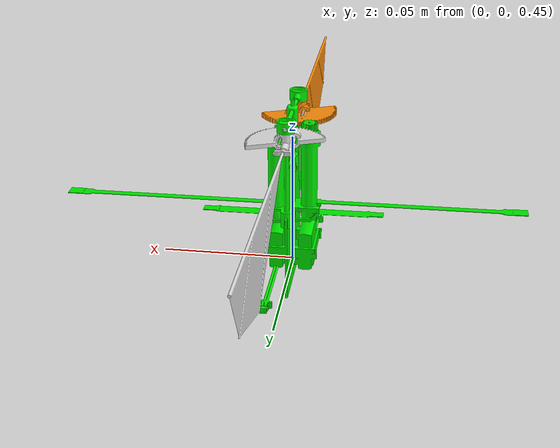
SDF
<?xml version="1.0" ?>
<sdf version="1.9">
    <world name="world1">
        <physics name="1ms" type="ignored">
            <max_step_size>0.0001</max_step_size>
            <real_time_factor>1</real_time_factor>
        </physics>
        <plugin filename="libignition-gazebo-physics-system.so" name="ignition::gazebo::systems::Physics">
    </plugin>
        <plugin filename="libignition-gazebo-user-commands-system.so" name="ignition::gazebo::systems::UserCommands">
    </plugin>
        <plugin filename="libignition-gazebo-scene-broadcaster-system.so" name="ignition::gazebo::systems::SceneBroadcaster">
    </plugin>
        <light type="directional" name="sun">
            <cast_shadows>true</cast_shadows>
            <pose>0 0 10 0 0 0</pose>
            <diffuse>0.8 0.8 0.8 1</diffuse>
            <specular>0.2 0.2 0.2 1</specular>
            <attenuation>
                <range>1000</range>
                <constant>0.9</constant>
                <linear>0.01</linear>
                <quadratic>0.001</quadratic>
            </attenuation>
            <direction>-0.5 0.1 -0.9</direction>
        </light>
        <model name="ground_plane">
            <pose relative_to="world">0 0 0 0 0 0</pose>
            <static>true</static>
            <link name="link">
                <collision name="link">
                    <geometry>
                        <plane>
                            <normal>0 0 1</normal>
                        </plane>
                    </geometry>
                </collision>
                <visual name="link">
                    <geometry>
                        <plane>
                            <normal>0 0 1</normal>
                            <size>100 100</size>
                        </plane>
                    </geometry>
                    <material>
                        <ambient>0.8 0.8 0.8 1</ambient>
                        <diffuse>0.8 0.8 0.8 1</diffuse>
                        <specular>0.8 0.8 0.8 1</specular>
                    </material>
                </visual>
            </link>
        </model>
        <model name="hardrobot">
            <pose relative_to="world">0 0 0.5 3.145 0 1.57</pose>
            <link name="base_link">
                <inertial>
                    <pose>-8.3564e-06 -4.8616e-05 0.028244 0 0 0</pose>
                    <mass>0.0094893000000000009</mass>
                    <inertia>
                        <ixx>1.0833000000000001e-06</ixx>
                        <ixy>-2.4791999999999999e-09</ixy>
                        <ixz>-2.8749000000000001e-16</ixz>
                        <iyy>1.2964e-06</iyy>
                        <iyz>-2.8980999999999999e-15</iyz>
                        <izz>7.5880000000000004e-07</izz>
                    </inertia>
                </inertial>
                <collision name="base_link_collision">
                    <pose>0 0 0 0 0 0</pose>
                    <geometry>
                        <mesh>
                            <scale>1 1 1</scale>
                            <uri>model://hardrobot/meshes/base_link.STL</uri>
                        </mesh>
                    </geometry>
                </collision>
                <visual name="base_link_visual">
                    <pose>0 0 0 0 0 0</pose>
                    <geometry>
                        <mesh>
                            <scale>1 1 1</scale>
                            <uri>model://hardrobot/meshes/base_link.STL</uri>
                        </mesh>
                    </geometry>
                    <material>
                        <diffuse>0 0.941175 0 1</diffuse>
                        <ambient>0 0.941175 0 1</ambient>
                    </material>
                </visual>
            </link>
            <link name="stroke_link_1">
                <pose relative_to="stroke_joint_1">0 0 0 0 0 0</pose>
                <inertial>
                    <pose>-0.0028729 0.0019735 0.0011937 0 0 0</pose>
                    <mass>0.0010774000000000001</mass>
                    <inertia>
                        <ixx>2.8171999999999999e-08</ixx>
                        <ixy>-2.9826000000000001e-10</ixy>
                        <ixz>-6.2879999999999998e-09</ixz>
                        <iyy>4.2497e-08</iyy>
                        <iyz>1.2433e-10</iyz>
                        <izz>1.6038999999999999e-08</izz>
                    </inertia>
                </inertial>
                <collision name="stroke_link_1_collision">
                    <pose>0 0 0 0 0 0</pose>
                    <geometry>
                        <mesh>
                            <scale>1 1 1</scale>
                            <uri>model://hardrobot/meshes/stroke_link_1.STL</uri>
                        </mesh>
                    </geometry>
                </collision>
                <visual name="stroke_link_1_visual">
                    <pose>0 0 0 0 0 0</pose>
                    <geometry>
                        <mesh>
                            <scale>1 1 1</scale>
                            <uri>model://hardrobot/meshes/stroke_link_1.STL</uri>
                        </mesh>
                    </geometry>
                    <material>
                        <diffuse>0.87255 0.87255 0.87255 1</diffuse>
                        <ambient>0.87255 0.87255 0.87255 1</ambient>
                    </material>
                </visual>
            </link>
            <link name="wing_link_1">
                <pose relative_to="pitch_joint_1">0 0 0 0 0 0</pose>
                <inertial>
                    <pose>0.10716044 -0.0262 0 0 0 0</pose>
                    <mass>0.00045176542225101337</mass>
                    <inertia>
                        <ixx>3.466440e-07</ixx>
                        <ixy>5.898330e-07</ixy>
                        <ixz>0.0</ixz>
                        <iyy>1.315983e-06</iyy>
                        <iyz>0.0</iyz>
                        <izz>1.574747e-06</izz>
                    </inertia>
                </inertial>
                <collision name="wing_link_1_collision">
                    <pose>0 0 0 0 0 0</pose>
                    <geometry>
                        <mesh>
                            <scale>1 1 1</scale>
                            <uri>model://hardrobot/meshes/wing_link_1.STL</uri>
                        </mesh>
                    </geometry>
                </collision>
                <visual name="wing_link_1_visual">
                    <pose>0 0 0 0 0 0</pose>
                    <geometry>
                        <mesh>
                            <scale>1 1 1</scale>
                            <uri>model://hardrobot/meshes/wing_link_1.STL</uri>
                        </mesh>
                    </geometry>
                    <material>
                        <diffuse>0.87255 0.87255 0.87255 1</diffuse>
                        <ambient>0.87255 0.87255 0.87255 1</ambient>
                    </material>
                </visual>
            </link>
            <link name="stroke_link_2">
                <pose relative_to="stroke_joint_2">0 0 0 0 0 0</pose>
                <inertial>
                    <pose>-0.0028729 0.0019735 0.0011937 0 0 0</pose>
                    <mass>0.0010774000000000001</mass>
                    <inertia>
                        <ixx>2.8171999999999999e-08</ixx>
                        <ixy>-2.9826000000000001e-10</ixy>
                        <ixz>-6.2879999999999998e-09</ixz>
                        <iyy>4.2497e-08</iyy>
                        <iyz>1.2433e-10</iyz>
                        <izz>1.6038999999999999e-08</izz>
                    </inertia>
                </inertial>
                <collision name="stroke_link_2_collision">
                    <pose>0 0 0 0 0 0</pose>
                    <geometry>
                        <mesh>
                            <scale>1 1 1</scale>
                            <uri>model://hardrobot/meshes/stroke_link_2.STL</uri>
                        </mesh>
                    </geometry>
                </collision>
                <visual name="stroke_link_2_visual">
                    <pose>0 0 0 0 0 0</pose>
                    <geometry>
                        <mesh>
                            <scale>1 1 1</scale>
                            <uri>model://hardrobot/meshes/stroke_link_2.STL</uri>
                        </mesh>
                    </geometry>
                    <material>
                        <diffuse>1 0.553925 0.0392163 1</diffuse>
                        <ambient>1 0.553925 0.0392163 1</ambient>
                    </material>
                </visual>
            </link>
            <joint name="stroke_joint_1" type="revolute">
                <pose relative_to="base_link">0.0165 0 -0.004 -1.5708 0 0</pose>
                <parent>base_link</parent>
                <child>stroke_link_1</child>
                <axis>
                    <xyz>0 1 0</xyz>
                    <limit>
                        <lower>-1.5708</lower>
                        <upper>1.5708</upper>
                    </limit>
                    <dynamics>
                        <damping>0.00010791988904416266</damping>
                        <spring_stiffness>0.020595037825713414</spring_stiffness>
                    </dynamics>
                </axis>
            </joint>
            <joint name="stroke_joint_2" type="revolute">
                <pose relative_to="base_link">-0.0165 0 -0.004 -1.5708 0 -3.141585307179587</pose>
                <parent>base_link</parent>
                <child>stroke_link_2</child>
                <axis>
                    <xyz>0 1 0</xyz>
                    <limit>
                        <lower>-1.5708</lower>
                        <upper>1.5708</upper>
                    </limit>
                    <dynamics>
                        <damping>0.00010791988904416266</damping>
                        <spring_stiffness>0.020595037825713414</spring_stiffness>
                    </dynamics>
                </axis>
            </joint>
            <joint name="pitch_joint_1" type="revolute">
                <pose relative_to="stroke_link_1">0 0 0 0 0 0</pose>
                <parent>stroke_link_1</parent>
                <child>wing_link_1</child>
                <axis>
                    <xyz>-1 0 0</xyz>
                    <dynamics>
                        <spring_reference>0</spring_reference>
                        <spring_stiffness>0.018139317614887816</spring_stiffness>
                    </dynamics>
                </axis>
            </joint>
            <joint name="pitch_joint_2" type="revolute">
                <pose relative_to="stroke_link_2">0 0 0 0 0 0</pose>
                <parent>stroke_link_2</parent>
                <child>wing_link_2</child>
                <axis>
                    <xyz>-1 0 0</xyz>
                    <limit>
                        <lower>-1.79769e+308</lower>
                        <upper>1.79769e+308</upper>
                    </limit>
                    <dynamics>
                        <spring_reference>0</spring_reference>
                        <spring_stiffness>0.018139317614887816</spring_stiffness>
                    </dynamics>
                </axis>
            </joint>
            <link name="wing_link_2">
                <pose relative_to="pitch_joint_2">0 0 0 0 0 0</pose>
                <inertial>
                    <pose>0.10716044 -0.0262009 0 0 0 0</pose>
                    <mass>0.00045176542225101337</mass>
                    <inertia>
                        <ixx>3.466440e-07</ixx>
                        <ixy>5.898330e-07</ixy>
                        <ixz>0.0</ixz>
                        <iyy>1.315983e-06</iyy>
                        <iyz>0.0</iyz>
                        <izz>1.574747e-06</izz>
                    </inertia>
                </inertial>
                <collision name="wing_link_2_collision">
                    <pose>0 0 0 0 0 0</pose>
                    <geometry>
                        <mesh>
                            <scale>1 1 1</scale>
                            <uri>model://hardrobot/meshes/wing_link_2.STL</uri>
                        </mesh>
                    </geometry>
                </collision>
                <visual name="wing_link_2_visual">
                    <pose>0 0 0 0 0 0</pose>
                    <geometry>
                        <mesh>
                            <scale>1 1 1</scale>
                            <uri>model://hardrobot/meshes/wing_link_2.STL</uri>
                        </mesh>
                    </geometry>
                    <material>
                        <diffuse>1 0.553925 0.0392163 1</diffuse>
                        <ambient>1 0.553925 0.0392163 1</ambient>
                    </material>
                </visual>
            </link>
            <joint name="anchor" type="revolute">
                <pose relative_to="base_link">0 0 0 0 0 0</pose>
                <parent>world</parent>
                <child>base_link</child>
                <axis>
                    <xyz>0 0 1</xyz>
                    <limit>
                        <lower>0</lower>
                        <upper>0</upper>
                    </limit>
                </axis>
            </joint>
            <plugin filename="aero_state_plugins" name="odometry_state">
                <world_name>world1</world_name>
                <odometry_topic>/odom</odometry_topic>
                <odom_publish_frequency>30000.0</odom_publish_frequency>
                <joint>stroke_joint_1</joint>
                <joint>pitch_joint_1</joint>
                <joint>pitch_joint_2</joint>
                <joint>stroke_joint_2</joint>
            </plugin>
            <plugin filename="libignition-gazebo-apply-joint-force-system.so" name="ignition::gazebo::systems::ApplyJointForce">
                <joint_name>stroke_joint_1</joint_name>
            </plugin>
            <plugin filename="libignition-gazebo-apply-joint-force-system.so" name="ignition::gazebo::systems::ApplyJointForce">
                <joint_name>stroke_joint_2</joint_name>
            </plugin>
            <plugin filename="aero_state_plugins" name="aerodynamics">
                <data_file_path>
          /home/darin/Github/ros2-gazebo-drake-sims/flapping_proj/optimization/data/aero.csv</data_file_path>
                <only_data>false</only_data>
                <link>
                    <link_name>wing_link_1</link_name>
                    <link_type>wing</link_type>
                    <stall_angle>15</stall_angle>
                    <fluid_density>1.293</fluid_density>
                    <drag_coefficient>1.28</drag_coefficient>
                    <lift_coefficient>1</lift_coefficient>
                    <control_joint>stroke_joint_1</control_joint>
                    <wing_pitch_joint>pitch_joint_1</wing_pitch_joint>
                    <blades>20</blades>
                    <center_pressure_list>0.01475, -0.006729472746176798, 0, 0.02425, -0.020225191313646113,
            0, 0.03375, -0.033658135195863866, 0, 0.043250000000000004, -0.04708460442700082, 0,
            0.05275, -0.06063880086582263, 0, 0.06225, -0.07412146712531768, 0, 0.07175,
            -0.08750407466489328, 0, 0.08124999999999999, -0.1009744055875916, 0,
            0.09074999999999998, -0.11458479905477152, 0, 0.10024999999999999, -0.1280322776675807,
            0, 0.10974999999999997, -0.14143773751704541, 0, 0.11924999999999998,
            -0.15218624611771853, 0, 0.12875, -0.143421304943054, 0, 0.13824999999999998,
            -0.1345441941628465, 0, 0.14775, -0.125667083382639, 0, 0.15725, -0.11678997260243146,
            0, 0.16674999999999998, -0.10791286182222395, 0, 0.17625000000000002,
            -0.09937717837971674, 0, 0.18574999999999997, -0.06666184128512709, 0, 0.19525,
            -0.02260705921843443, 0</center_pressure_list>
                    <upward_vector_list>0, 0, 1, 0, 0, 1, 0, 0, 1, 0, 0, 1, 0, 0, 1, 0, 0, 1, 0, 0, 1, 0, 0,
            1, 0, 0, 1, 0, 0, 1, 0, 0, 1, 0, 0, 1, 0, 0, 1, 0, 0, 1, 0, 0, 1, 0, 0, 1, 0, 0, 1, 0,
            0, 1, 0, 0, 1, 0, 0, 1 </upward_vector_list>
                    <chord_direction_list>0, 0, 1, 0, 0, 1, 0, 0, 1, 0, 0, 1, 0, 0, 1, 0, 0, 1, 0, 0, 1, 0, 0,
            1, 0, 0, 1, 0, 0, 1, 0, 0, 1, 0, 0, 1, 0, 0, 1, 0, 0, 1, 0, 0, 1, 0, 0, 1, 0, 0, 1, 0,
            0, 1, 0, 0, 1, 0, 0, 1</chord_direction_list>
                    <blade_area_list>2.557199643547183e-05, 7.685572699185523e-05, 0.00012790091374428268,
            0.0001789214968226031, 0.000230427443290126, 0.0002816615750762072,
            0.00033251548372659445, 0.0003837027412328481, 0.00043542223640813177,
            0.00048652265513680665, 0.0005374634025647725, 0.0005783077352473304,
            0.0005450009587836052, 0.0005112679378188167, 0.00047753491685402814,
            0.00044380189588923955, 0.000410068874924451, 0.0003776332778429236,
            0.00025331499688348297, 8.590682503005082e-05</blade_area_list>
                </link>
                <link>
                    <link_name>wing_link_2</link_name>
                    <link_type>wing</link_type>
                    <stall_angle>15</stall_angle>
                    <fluid_density>1.293</fluid_density>
                    <drag_coefficient>1.28</drag_coefficient>
                    <lift_coefficient>1</lift_coefficient>
                    <control_joint>stroke_joint_2</control_joint>
                    <wing_pitch_joint>pitch_joint_2</wing_pitch_joint>
                    <blades>20</blades>
                    <center_pressure_list>0.01475, -0.006729472746176798, 0, 0.02425, -0.020225191313646113,
            0, 0.03375, -0.033658135195863866, 0, 0.043250000000000004, -0.04708460442700082, 0,
            0.05275, -0.06063880086582263, 0, 0.06225, -0.07412146712531768, 0, 0.07175,
            -0.08750407466489328, 0, 0.08124999999999999, -0.1009744055875916, 0,
            0.09074999999999998, -0.11458479905477152, 0, 0.10024999999999999, -0.1280322776675807,
            0, 0.10974999999999997, -0.14143773751704541, 0, 0.11924999999999998,
            -0.15218624611771853, 0, 0.12875, -0.143421304943054, 0, 0.13824999999999998,
            -0.1345441941628465, 0, 0.14775, -0.125667083382639, 0, 0.15725, -0.11678997260243146,
            0, 0.16674999999999998, -0.10791286182222395, 0, 0.17625000000000002,
            -0.09937717837971674, 0, 0.18574999999999997, -0.06666184128512709, 0, 0.19525,
            -0.02260705921843443, 0</center_pressure_list>
                    <upward_vector_list>0, 0, 1, 0, 0, 1, 0, 0, 1, 0, 0, 1, 0, 0, 1, 0, 0, 1, 0, 0, 1, 0, 0,
            1, 0, 0, 1, 0, 0, 1, 0, 0, 1, 0, 0, 1, 0, 0, 1, 0, 0, 1, 0, 0, 1, 0, 0, 1, 0, 0, 1, 0,
            0, 1, 0, 0, 1, 0, 0, 1 </upward_vector_list>
                    <chord_direction_list>0, 0, 1, 0, 0, 1, 0, 0, 1, 0, 0, 1, 0, 0, 1, 0, 0, 1, 0, 0, 1, 0, 0,
            1, 0, 0, 1, 0, 0, 1, 0, 0, 1, 0, 0, 1, 0, 0, 1, 0, 0, 1, 0, 0, 1, 0, 0, 1, 0, 0, 1, 0,
            0, 1, 0, 0, 1, 0, 0, 1</chord_direction_list>
                    <blade_area_list>2.557199643547183e-05, 7.685572699185523e-05, 0.00012790091374428268,
            0.0001789214968226031, 0.000230427443290126, 0.0002816615750762072,
            0.00033251548372659445, 0.0003837027412328481, 0.00043542223640813177,
            0.00048652265513680665, 0.0005374634025647725, 0.0005783077352473304,
            0.0005450009587836052, 0.0005112679378188167, 0.00047753491685402814,
            0.00044380189588923955, 0.000410068874924451, 0.0003776332778429236,
            0.00025331499688348297, 8.590682503005082e-05</blade_area_list>
                </link>
            </plugin>
        </model>
    </world>
</sdf>
